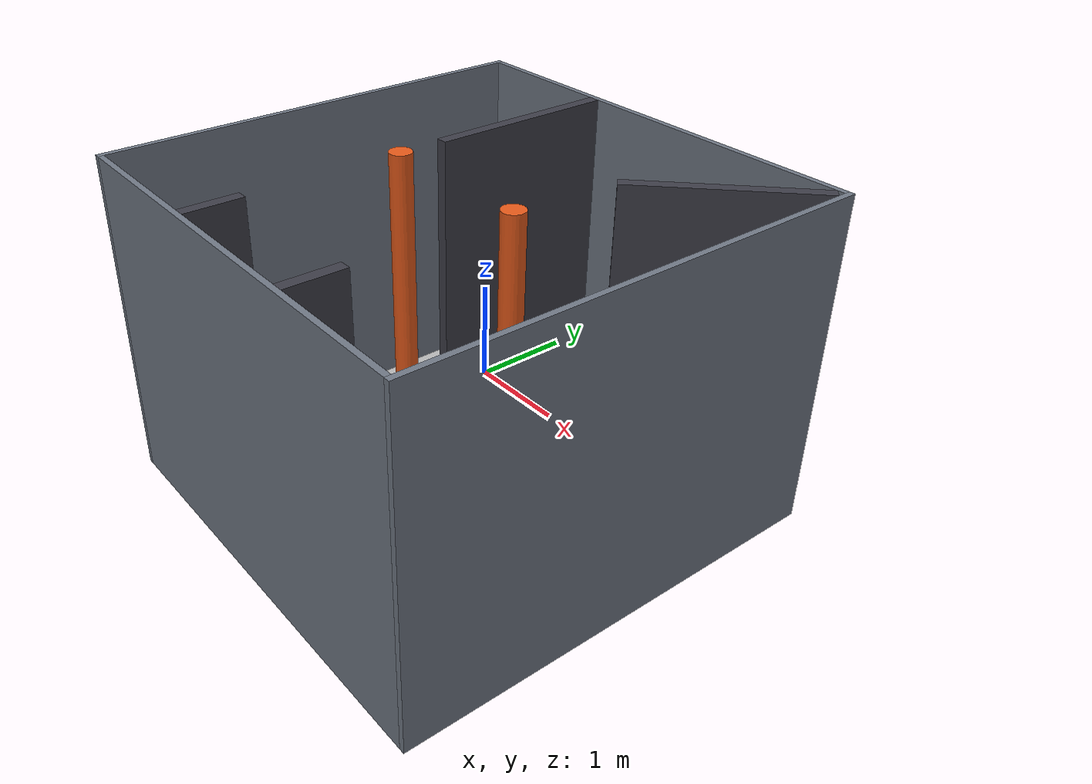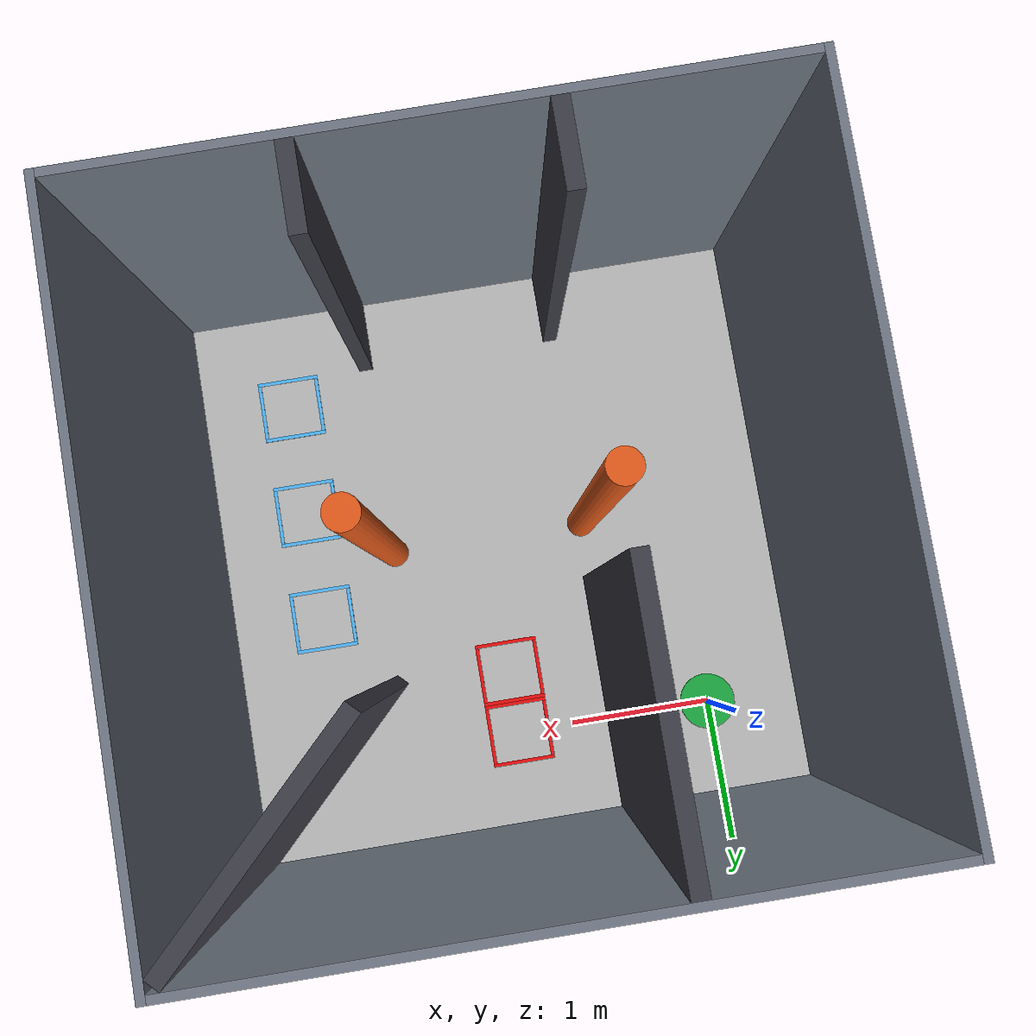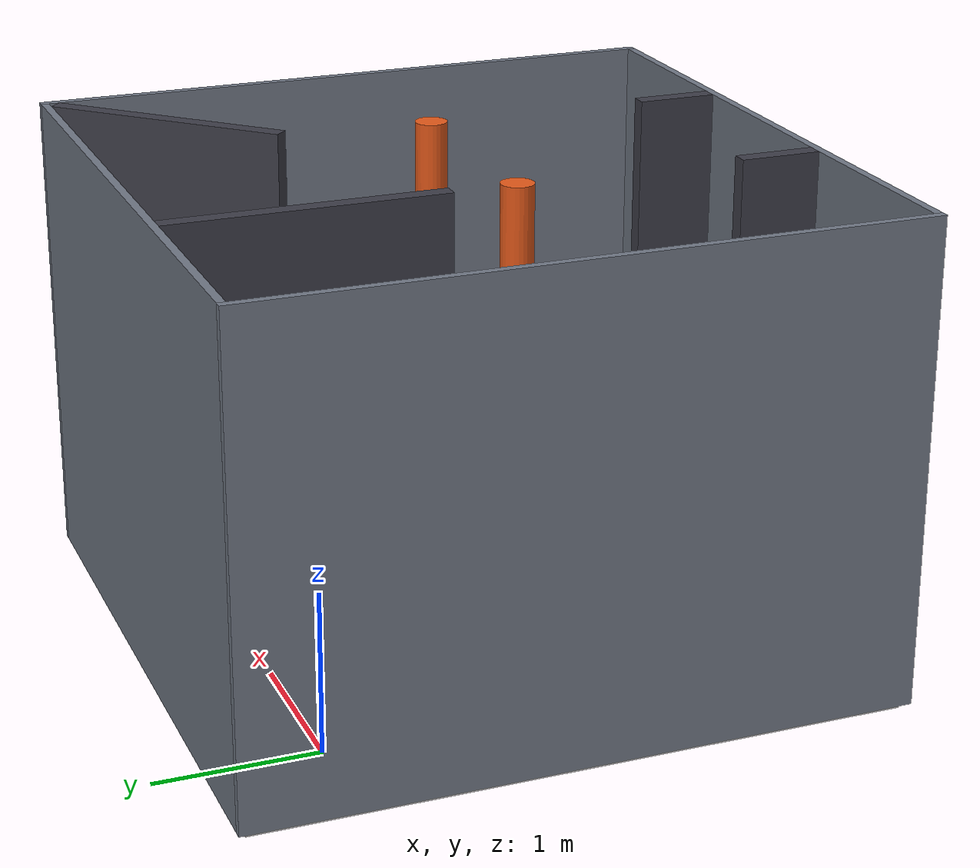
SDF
<?xml version="1.0" ?>
<sdf version="1.6">
  <world name="default">
    <gravity>0 0 -9.81</gravity>
    <magnetic_field>6.0e-6 2.3e-5 -4.2e-5</magnetic_field>
    <!-- Match PX4 1c8ab2a0d7's lockstep assumptions from empty.world. -->
    <physics name="default_physics" default="0" type="ode">
      <ode>
        <solver>
          <type>quick</type>
          <iters>10</iters>
          <sor>1.3</sor>
          <use_dynamic_moi_rescaling>0</use_dynamic_moi_rescaling>
        </solver>
        <constraints>
          <cfm>0</cfm>
          <erp>0.2</erp>
          <contact_max_correcting_vel>100</contact_max_correcting_vel>
          <contact_surface_layer>0.001</contact_surface_layer>
        </constraints>
      </ode>
      <max_step_size>0.004</max_step_size>
      <real_time_factor>1</real_time_factor>
      <real_time_update_rate>250</real_time_update_rate>
    </physics>
    <gui fullscreen="0">
      <camera name="field_camera">
        <pose>-3.5 -7.0 7.0 0 0.7 0.85</pose>
        <view_controller>orbit</view_controller>
      </camera>
    </gui>

    <scene>
      <ambient>0.55 0.55 0.55 1</ambient>
      <background>0.72 0.76 0.82 1</background>
      <shadows>true</shadows>
    </scene>

    <include>
      <uri>model://sun</uri>
    </include>

    <model name="competition_floor">
      <static>true</static>
      <link name="floor_link">
        <collision name="floor_collision">
          <geometry>
            <box><size>4.0 4.0 0.04</size></box>
          </geometry>
          <pose>1.35 -1.35 -0.02 0 0 0</pose>
        </collision>
        <visual name="floor_visual">
          <geometry>
            <box><size>4.0 4.0 0.04</size></box>
          </geometry>
          <pose>1.35 -1.35 -0.02 0 0 0</pose>
          <material>
            <ambient>0.72 0.72 0.72 1</ambient>
            <diffuse>0.72 0.72 0.72 1</diffuse>
          </material>
        </visual>
      </link>
    </model>

    <model name="perimeter_wall_north">
      <static>true</static>
      <pose>1.35 0.675 1.50 0 0 0</pose>
      <link name="wall_link">
        <collision name="collision">
          <geometry><box><size>4.00 0.05 3.00</size></box></geometry>
        </collision>
        <visual name="visual">
          <geometry><box><size>4.00 0.05 3.00</size></box></geometry>
          <material>
            <ambient>0.34 0.37 0.41 1</ambient>
            <diffuse>0.44 0.47 0.52 1</diffuse>
          </material>
        </visual>
      </link>
    </model>

    <model name="perimeter_wall_south">
      <static>true</static>
      <pose>1.35 -3.375 1.50 0 0 0</pose>
      <link name="wall_link">
        <collision name="collision">
          <geometry><box><size>4.00 0.05 3.00</size></box></geometry>
        </collision>
        <visual name="visual">
          <geometry><box><size>4.00 0.05 3.00</size></box></geometry>
          <material>
            <ambient>0.34 0.37 0.41 1</ambient>
            <diffuse>0.44 0.47 0.52 1</diffuse>
          </material>
        </visual>
      </link>
    </model>

    <model name="perimeter_wall_west">
      <static>true</static>
      <pose>-0.675 -1.35 1.50 0 0 0</pose>
      <link name="wall_link">
        <collision name="collision">
          <geometry><box><size>0.05 4.10 3.00</size></box></geometry>
        </collision>
        <visual name="visual">
          <geometry><box><size>0.05 4.10 3.00</size></box></geometry>
          <material>
            <ambient>0.34 0.37 0.41 1</ambient>
            <diffuse>0.44 0.47 0.52 1</diffuse>
          </material>
        </visual>
      </link>
    </model>

    <model name="perimeter_wall_east">
      <static>true</static>
      <pose>3.375 -1.35 1.50 0 0 0</pose>
      <link name="wall_link">
        <collision name="collision">
          <geometry><box><size>0.05 4.10 3.00</size></box></geometry>
        </collision>
        <visual name="visual">
          <geometry><box><size>0.05 4.10 3.00</size></box></geometry>
          <material>
            <ambient>0.34 0.37 0.41 1</ambient>
            <diffuse>0.44 0.47 0.52 1</diffuse>
          </material>
        </visual>
      </link>
    </model>

    <model name="fixed_obstacle_1">
      <static>true</static>
      <pose>0.70 -0.20 1.50 0 0 0</pose>
      <link name="obstacle_link">
        <collision name="collision">
          <geometry><box><size>0.10 1.70 3.00</size></box></geometry>
        </collision>
        <visual name="visual">
          <geometry><box><size>0.10 1.70 3.00</size></box></geometry>
          <material>
            <ambient>0.20 0.20 0.22 1</ambient>
            <diffuse>0.24 0.24 0.28 1</diffuse>
          </material>
        </visual>
      </link>
    </model>

    <model name="fixed_obstacle_2">
      <static>true</static>
      <pose>2.75 0.05 1.50 0 0 0.785398</pose>
      <link name="obstacle_link">
        <collision name="collision">
          <geometry><box><size>1.60 0.10 3.00</size></box></geometry>
        </collision>
        <visual name="visual">
          <geometry><box><size>1.60 0.10 3.00</size></box></geometry>
          <material>
            <ambient>0.20 0.20 0.22 1</ambient>
            <diffuse>0.24 0.24 0.28 1</diffuse>
          </material>
        </visual>
      </link>
    </model>

    <model name="fixed_obstacle_3">
      <static>true</static>
      <pose>0.70 -3.10 1.50 0 0 0</pose>
      <link name="obstacle_link">
        <collision name="collision">
          <geometry><box><size>0.10 0.50 3.00</size></box></geometry>
        </collision>
        <visual name="visual">
          <geometry><box><size>0.10 0.50 3.00</size></box></geometry>
          <material>
            <ambient>0.20 0.20 0.22 1</ambient>
            <diffuse>0.24 0.24 0.28 1</diffuse>
          </material>
        </visual>
      </link>
    </model>

    <model name="fixed_obstacle_4">
      <static>true</static>
      <pose>2.10 -3.10 1.50 0 0 0</pose>
      <link name="obstacle_link">
        <collision name="collision">
          <geometry><box><size>0.10 0.50 3.00</size></box></geometry>
        </collision>
        <visual name="visual">
          <geometry><box><size>0.10 0.50 3.00</size></box></geometry>
          <material>
            <ambient>0.20 0.20 0.22 1</ambient>
            <diffuse>0.24 0.24 0.28 1</diffuse>
          </material>
        </visual>
      </link>
    </model>

    <model name="random_obstacle_1">
      <static>true</static>
      <pose>0.70 -1.45 1.50 0 0 0</pose>
      <link name="obstacle_link">
        <collision name="collision">
          <geometry><cylinder><radius>0.10</radius><length>3.00</length></cylinder></geometry>
        </collision>
        <visual name="visual">
          <geometry><cylinder><radius>0.10</radius><length>3.00</length></cylinder></geometry>
          <material>
            <ambient>0.85 0.30 0.10 1</ambient>
            <diffuse>0.90 0.35 0.10 1</diffuse>
          </material>
        </visual>
      </link>
    </model>

    <model name="random_obstacle_2">
      <static>true</static>
      <pose>2.10 -1.45 1.50 0 0 0</pose>
      <link name="obstacle_link">
        <collision name="collision">
          <geometry><cylinder><radius>0.10</radius><length>3.00</length></cylinder></geometry>
        </collision>
        <visual name="visual">
          <geometry><cylinder><radius>0.10</radius><length>3.00</length></cylinder></geometry>
          <material>
            <ambient>0.85 0.30 0.10 1</ambient>
            <diffuse>0.90 0.35 0.10 1</diffuse>
          </material>
        </visual>
      </link>
    </model>

    <!-- Start pad (起飞点): mat (650, 3350) = the takeoff cross on the drawing,
         which is the PX4 home position -> gazebo (0, 0). -->
    <model name="takeoff_pad">
      <static>true</static>
      <pose>0 0 0.006 0 0 0</pose>
      <link name="pad_link">
        <visual name="pad">
          <geometry><cylinder><radius>0.20</radius><length>0.012</length></cylinder></geometry>
          <material>
            <ambient>0.10 0.55 0.20 1</ambient>
            <diffuse>0.10 0.65 0.25 1</diffuse>
          </material>
        </visual>
      </link>
    </model>

    <!-- 危险品任务区 #1: 易燃 (GB 2894 当心火灾 / 易燃).
         Drawing: "1950" callout from the right mat edge -> mat x 2050.
         Hazards are a column, unlike the obstacles. -->
    <model name="hazard_zone_card_1">
      <static>true</static>
      <pose>1.40 0.00 0 0 0 0</pose>
      <link name="card_link">
        <visual name="sign_face">
          <pose>0 0 0.004 0 0 0</pose>
          <geometry><box><size>0.40 0.40 0.008</size></box></geometry>
          <material>
            <script>
              <uri>model://gc_task_markers/materials/scripts</uri>
              <uri>model://gc_task_markers/materials/textures</uri>
              <name>GC/Sign/Flammable</name>
            </script>
          </material>
        </visual>
        <visual name="frame_south">
          <pose>0 -0.2125 0.005 0 0 0</pose>
          <geometry><box><size>0.45 0.025 0.010</size></box></geometry>
          <material><ambient>0.70 0.02 0.02 1</ambient><diffuse>0.90 0.05 0.05 1</diffuse></material>
        </visual>
        <visual name="frame_north">
          <pose>0 0.2125 0.005 0 0 0</pose>
          <geometry><box><size>0.45 0.025 0.010</size></box></geometry>
          <material><ambient>0.70 0.02 0.02 1</ambient><diffuse>0.90 0.05 0.05 1</diffuse></material>
        </visual>
        <visual name="frame_west">
          <pose>-0.2125 0 0.005 0 0 0</pose>
          <geometry><box><size>0.025 0.40 0.010</size></box></geometry>
          <material><ambient>0.70 0.02 0.02 1</ambient><diffuse>0.90 0.05 0.05 1</diffuse></material>
        </visual>
        <visual name="frame_east">
          <pose>0.2125 0 0.005 0 0 0</pose>
          <geometry><box><size>0.025 0.40 0.010</size></box></geometry>
          <material><ambient>0.70 0.02 0.02 1</ambient><diffuse>0.90 0.05 0.05 1</diffuse></material>
        </visual>
      </link>
    </model>

    <model name="hazard_zone_card_2">
      <static>true</static>
      <pose>1.40 -0.45 0 0 0 0</pose>
      <link name="card_link">
        <visual name="sign_face">
          <pose>0 0 0.004 0 0 0</pose>
          <geometry><box><size>0.40 0.40 0.008</size></box></geometry>
          <material>
            <script>
              <uri>model://gc_task_markers/materials/scripts</uri>
              <uri>model://gc_task_markers/materials/textures</uri>
              <name>GC/Sign/Explosive</name>
            </script>
          </material>
        </visual>
        <visual name="frame_south">
          <pose>0 -0.2125 0.005 0 0 0</pose>
          <geometry><box><size>0.45 0.025 0.010</size></box></geometry>
          <material><ambient>0.70 0.02 0.02 1</ambient><diffuse>0.90 0.05 0.05 1</diffuse></material>
        </visual>
        <visual name="frame_north">
          <pose>0 0.2125 0.005 0 0 0</pose>
          <geometry><box><size>0.45 0.025 0.010</size></box></geometry>
          <material><ambient>0.70 0.02 0.02 1</ambient><diffuse>0.90 0.05 0.05 1</diffuse></material>
        </visual>
        <visual name="frame_west">
          <pose>-0.2125 0 0.005 0 0 0</pose>
          <geometry><box><size>0.025 0.40 0.010</size></box></geometry>
          <material><ambient>0.70 0.02 0.02 1</ambient><diffuse>0.90 0.05 0.05 1</diffuse></material>
        </visual>
        <visual name="frame_east">
          <pose>0.2125 0 0.005 0 0 0</pose>
          <geometry><box><size>0.025 0.40 0.010</size></box></geometry>
          <material><ambient>0.70 0.02 0.02 1</ambient><diffuse>0.90 0.05 0.05 1</diffuse></material>
        </visual>
      </link>
    </model>

    <model name="person_zone_card_1">
      <static>true</static>
      <pose>2.70 -1.05 0 0 0 0</pose>
      <link name="card_link">
        <visual name="sign_face">
          <pose>0 0 0.004 0 0 0</pose>
          <geometry><box><size>0.40 0.40 0.008</size></box></geometry>
          <material>
            <script>
              <uri>model://gc_task_markers/materials/scripts</uri>
              <uri>model://gc_task_markers/materials/textures</uri>
              <name>GC/Sign/Person</name>
            </script>
          </material>
        </visual>
        <visual name="frame_south">
          <pose>0 -0.2125 0.005 0 0 0</pose>
          <geometry><box><size>0.45 0.025 0.010</size></box></geometry>
          <material><ambient>0.22 0.58 0.88 1</ambient><diffuse>0.30 0.70 0.95 1</diffuse></material>
        </visual>
        <visual name="frame_north">
          <pose>0 0.2125 0.005 0 0 0</pose>
          <geometry><box><size>0.45 0.025 0.010</size></box></geometry>
          <material><ambient>0.22 0.58 0.88 1</ambient><diffuse>0.30 0.70 0.95 1</diffuse></material>
        </visual>
        <visual name="frame_west">
          <pose>-0.2125 0 0.005 0 0 0</pose>
          <geometry><box><size>0.025 0.40 0.010</size></box></geometry>
          <material><ambient>0.22 0.58 0.88 1</ambient><diffuse>0.30 0.70 0.95 1</diffuse></material>
        </visual>
        <visual name="frame_east">
          <pose>0.2125 0 0.005 0 0 0</pose>
          <geometry><box><size>0.025 0.40 0.010</size></box></geometry>
          <material><ambient>0.22 0.58 0.88 1</ambient><diffuse>0.30 0.70 0.95 1</diffuse></material>
        </visual>
      </link>
    </model>

    <model name="person_zone_card_2">
      <static>true</static>
      <pose>2.70 -1.85 0 0 0 0</pose>
      <link name="card_link">
        <visual name="sign_face">
          <pose>0 0 0.004 0 0 0</pose>
          <geometry><box><size>0.40 0.40 0.008</size></box></geometry>
          <material>
            <script>
              <uri>model://gc_task_markers/materials/scripts</uri>
              <uri>model://gc_task_markers/materials/textures</uri>
              <name>GC/Sign/Person</name>
            </script>
          </material>
        </visual>
        <visual name="frame_south">
          <pose>0 -0.2125 0.005 0 0 0</pose>
          <geometry><box><size>0.45 0.025 0.010</size></box></geometry>
          <material><ambient>0.22 0.58 0.88 1</ambient><diffuse>0.30 0.70 0.95 1</diffuse></material>
        </visual>
        <visual name="frame_north">
          <pose>0 0.2125 0.005 0 0 0</pose>
          <geometry><box><size>0.45 0.025 0.010</size></box></geometry>
          <material><ambient>0.22 0.58 0.88 1</ambient><diffuse>0.30 0.70 0.95 1</diffuse></material>
        </visual>
        <visual name="frame_west">
          <pose>-0.2125 0 0.005 0 0 0</pose>
          <geometry><box><size>0.025 0.40 0.010</size></box></geometry>
          <material><ambient>0.22 0.58 0.88 1</ambient><diffuse>0.30 0.70 0.95 1</diffuse></material>
        </visual>
        <visual name="frame_east">
          <pose>0.2125 0 0.005 0 0 0</pose>
          <geometry><box><size>0.025 0.40 0.010</size></box></geometry>
          <material><ambient>0.22 0.58 0.88 1</ambient><diffuse>0.30 0.70 0.95 1</diffuse></material>
        </visual>
      </link>
    </model>

    <model name="person_zone_card_3">
      <static>true</static>
      <pose>2.70 -2.65 0 0 0 0</pose>
      <link name="card_link">
        <visual name="sign_face">
          <pose>0 0 0.004 0 0 0</pose>
          <geometry><box><size>0.40 0.40 0.008</size></box></geometry>
          <material>
            <script>
              <uri>model://gc_task_markers/materials/scripts</uri>
              <uri>model://gc_task_markers/materials/textures</uri>
              <name>GC/Sign/Person</name>
            </script>
          </material>
        </visual>
        <visual name="frame_south">
          <pose>0 -0.2125 0.005 0 0 0</pose>
          <geometry><box><size>0.45 0.025 0.010</size></box></geometry>
          <material><ambient>0.22 0.58 0.88 1</ambient><diffuse>0.30 0.70 0.95 1</diffuse></material>
        </visual>
        <visual name="frame_north">
          <pose>0 0.2125 0.005 0 0 0</pose>
          <geometry><box><size>0.45 0.025 0.010</size></box></geometry>
          <material><ambient>0.22 0.58 0.88 1</ambient><diffuse>0.30 0.70 0.95 1</diffuse></material>
        </visual>
        <visual name="frame_west">
          <pose>-0.2125 0 0.005 0 0 0</pose>
          <geometry><box><size>0.025 0.40 0.010</size></box></geometry>
          <material><ambient>0.22 0.58 0.88 1</ambient><diffuse>0.30 0.70 0.95 1</diffuse></material>
        </visual>
        <visual name="frame_east">
          <pose>0.2125 0 0.005 0 0 0</pose>
          <geometry><box><size>0.025 0.40 0.010</size></box></geometry>
          <material><ambient>0.22 0.58 0.88 1</ambient><diffuse>0.30 0.70 0.95 1</diffuse></material>
        </visual>
      </link>
    </model>
  </world>
</sdf>
